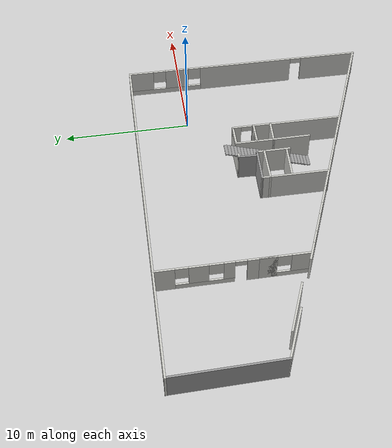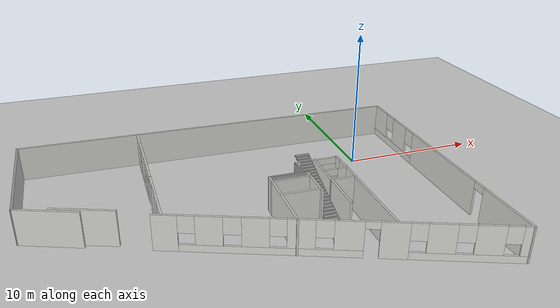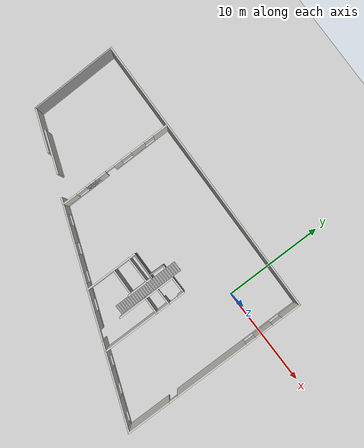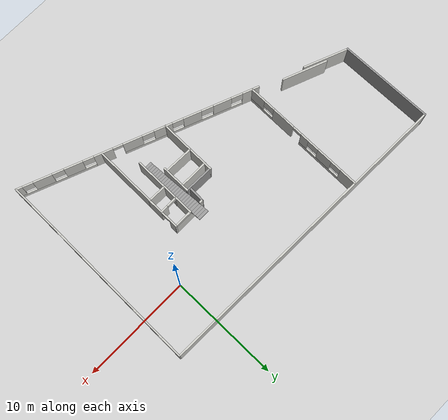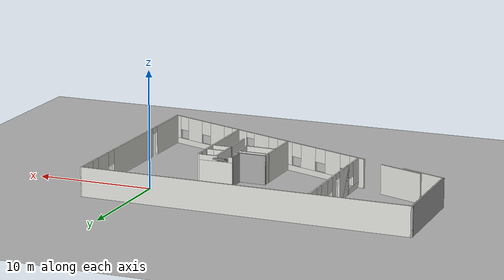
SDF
<sdf version="1.4">
  <world name="default">

    <scene>
      <ambient>0.4 0.4 0.4 1</ambient>
      <background>0.7 0.7 0.7 1</background>
      <shadows>true</shadows>
    </scene>

    <!-- A global light source -->
    <include>
      <uri>model://sun</uri>
      <cast_shadows>false</cast_shadows>
      <pose>0 0 100000 0 0 0</pose>
      <diffuse>0.8 0.8 0.8 1</diffuse>
      <specular>0.9 0.9 0.9 1</specular>
      <attenuation>
        <range>1000</range>
        <constant>0.9</constant>
        <linear>0.01</linear>
        <quadratic>0.001</quadratic>
      </attenuation>
      <!-- Vertical direction, for easier position debug -->
      <direction>0 0 -1</direction>
    </include>

    <!-- A ground plane -->
    <include>
      <uri>model://ground_plane</uri>
    </include>

    <physics type="ode">
      <real_time_update_rate>1000.0</real_time_update_rate>
      <max_step_size>0.001</max_step_size>
      <real_time_factor>1</real_time_factor>
      <ode>
        <solver>
          <type>quick</type>
          <iters>150</iters>
          <precon_iters>0</precon_iters>
          <sor>1.400000</sor>
          <use_dynamic_moi_rescaling>1</use_dynamic_moi_rescaling>
        </solver>
        <constraints>
          <cfm>0.00001</cfm>
          <erp>0.2</erp>
          <contact_max_correcting_vel>2000.000000</contact_max_correcting_vel>
          <contact_surface_layer>0.01000</contact_surface_layer>
        </constraints>
      </ode>
    </physics>

  <include>
    <uri>model://erle</uri>
    <pose>-10 -5 0 0 0 0</pose>
  </include>

  <plugin name="ardupilot_sitl_gazebo_plugin" filename="libardupilot_sitl_gazebo_plugin.so">
    <UAV_MODEL>erlecopter</UAV_MODEL>
  </plugin>

</world>

</sdf>
